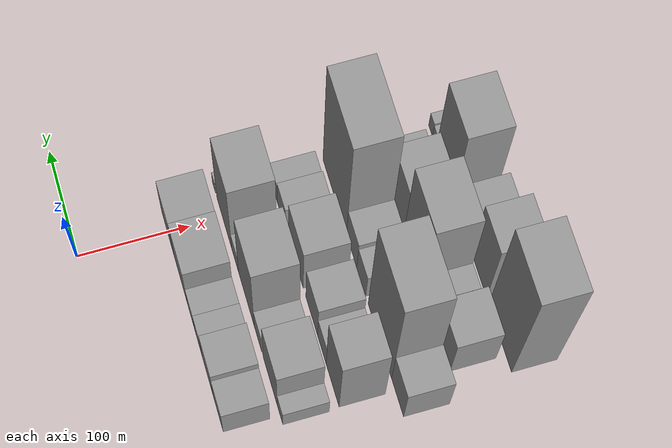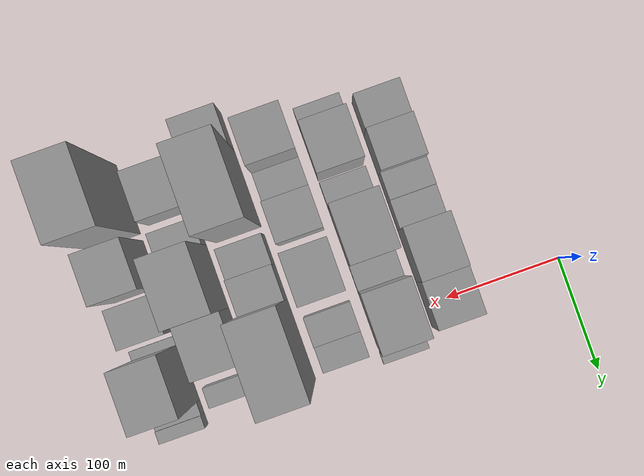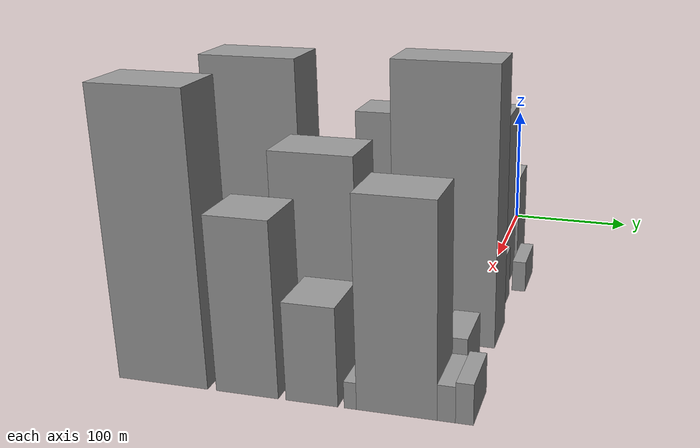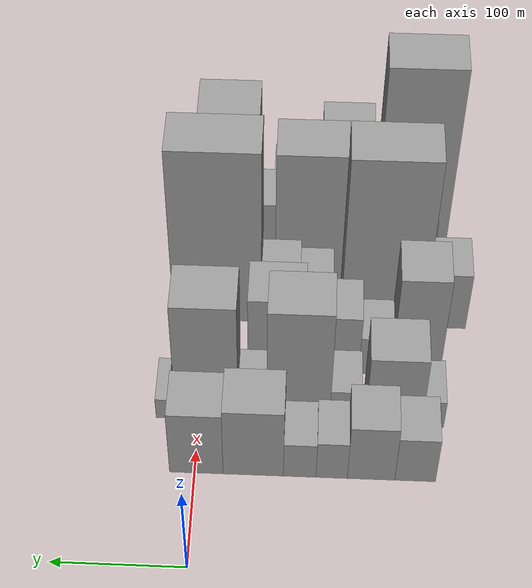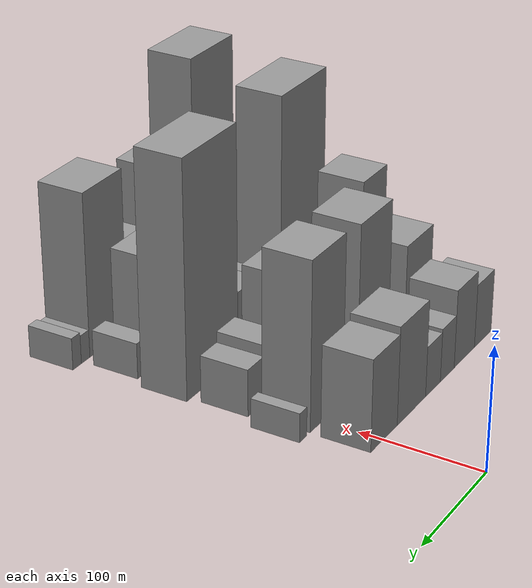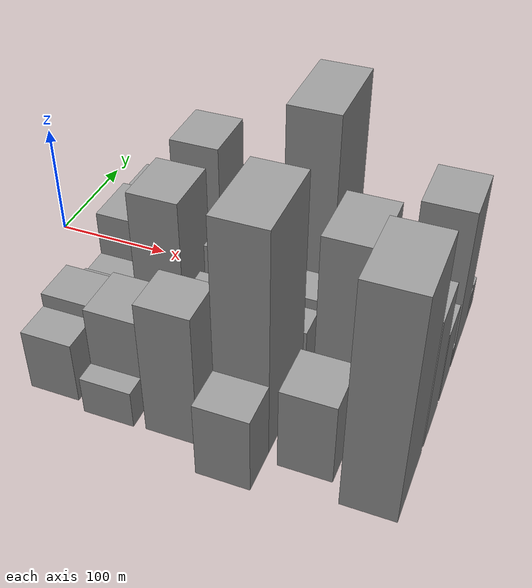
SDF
<sdf version="1.6">
 <world name="default">
  <model name="building_20">
   <static>1</static>
   <pose>100.0000 -166.4657 0 0.000000 0.000000 0.000000</pose>
   <link name="link">
    <pose>0 0 27.00 0 0 0</pose>
    <collision name="collision"><geometry><box><size>40.0000 30.4520 54.0000</size></box></geometry></collision>
    <visual name="visual">
     <cast_shadows>0</cast_shadows>
     <geometry><box><size>40.0000 30.4520 54.0000</size></box></geometry>
     <material>
      <script>
       <uri>model://grey_wall/materials/scripts</uri>
       <uri>model://grey_wall/materials/textures</uri>
       <name>vrc/grey_wall</name>
      </script>
     </material>
    </visual>
   </link>
  </model>
  <model name="building_21">
   <static>1</static>
   <pose>100.0000 -133.3583 0 0.000000 0.000000 0.000000</pose>
   <link name="link">
    <pose>0 0 33.00 0 0 0</pose>
    <collision name="collision"><geometry><box><size>40.0000 35.7628 66.0000</size></box></geometry></collision>
    <visual name="visual">
     <cast_shadows>0</cast_shadows>
     <geometry><box><size>40.0000 35.7628 66.0000</size></box></geometry>
     <material>
      <script>
       <uri>model://grey_wall/materials/scripts</uri>
       <uri>model://grey_wall/materials/textures</uri>
       <name>vrc/grey_wall</name>
      </script>
     </material>
    </visual>
   </link>
  </model>
  <model name="building_22">
   <static>1</static>
   <pose>100.0000 -103.6162 0 0.000000 0.000000 0.000000</pose>
   <link name="link">
    <pose>0 0 22.50 0 0 0</pose>
    <collision name="collision"><geometry><box><size>40.0000 23.7214 45.0000</size></box></geometry></collision>
    <visual name="visual">
     <cast_shadows>0</cast_shadows>
     <geometry><box><size>40.0000 23.7214 45.0000</size></box></geometry>
     <material>
      <script>
       <uri>model://grey_wall/materials/scripts</uri>
       <uri>model://grey_wall/materials/textures</uri>
       <name>vrc/grey_wall</name>
      </script>
     </material>
    </visual>
   </link>
  </model>
  <model name="building_23">
   <static>1</static>
   <pose>100.0000 -79.4500 0 0.000000 0.000000 0.000000</pose>
   <link name="link">
    <pose>0 0 21.00 0 0 0</pose>
    <collision name="collision"><geometry><box><size>40.0000 24.6110 42.0000</size></box></geometry></collision>
    <visual name="visual">
     <cast_shadows>0</cast_shadows>
     <geometry><box><size>40.0000 24.6110 42.0000</size></box></geometry>
     <material>
      <script>
       <uri>model://grey_wall/materials/scripts</uri>
       <uri>model://grey_wall/materials/textures</uri>
       <name>vrc/grey_wall</name>
      </script>
     </material>
    </visual>
   </link>
  </model>
  <model name="building_24">
   <static>1</static>
   <pose>100.0000 -44.3742 0 0.000000 0.000000 0.000000</pose>
   <link name="link">
    <pose>0 0 40.50 0 0 0</pose>
    <collision name="collision"><geometry><box><size>40.0000 45.5407 81.0000</size></box></geometry></collision>
    <visual name="visual">
     <cast_shadows>0</cast_shadows>
     <geometry><box><size>40.0000 45.5407 81.0000</size></box></geometry>
     <material>
      <script>
       <uri>model://grey_wall/materials/scripts</uri>
       <uri>model://grey_wall/materials/textures</uri>
       <name>vrc/grey_wall</name>
      </script>
     </material>
    </visual>
   </link>
  </model>
  <model name="building_25">
   <static>1</static>
   <pose>100.0000 -1.3551 0 0.000000 0.000000 0.000000</pose>
   <link name="link">
    <pose>0 0 37.50 0 0 0</pose>
    <collision name="collision"><geometry><box><size>40.0000 40.4975 75.0000</size></box></geometry></collision>
    <visual name="visual">
     <cast_shadows>0</cast_shadows>
     <geometry><box><size>40.0000 40.4975 75.0000</size></box></geometry>
     <material>
      <script>
       <uri>model://grey_wall/materials/scripts</uri>
       <uri>model://grey_wall/materials/textures</uri>
       <name>vrc/grey_wall</name>
      </script>
     </material>
    </visual>
   </link>
  </model>
  <model name="building_64">
   <static>1</static>
   <pose>149.0000 -181.0487 0 0.000000 0.000000 0.000000</pose>
   <link name="link">
    <pose>0 0 16.50 0 0 0</pose>
    <collision name="collision"><geometry><box><size>40.0000 16.7886 33.0000</size></box></geometry></collision>
    <visual name="visual">
     <cast_shadows>0</cast_shadows>
     <geometry><box><size>40.0000 16.7886 33.0000</size></box></geometry>
     <material>
      <script>
       <uri>model://grey_wall/materials/scripts</uri>
       <uri>model://grey_wall/materials/textures</uri>
       <name>vrc/grey_wall</name>
      </script>
     </material>
    </visual>
   </link>
  </model>
  <model name="building_65">
   <static>1</static>
   <pose>149.0000 -150.7828 0 0.000000 0.000000 0.000000</pose>
   <link name="link">
    <pose>0 0 42.00 0 0 0</pose>
    <collision name="collision"><geometry><box><size>40.0000 43.7432 84.0000</size></box></geometry></collision>
    <visual name="visual">
     <cast_shadows>0</cast_shadows>
     <geometry><box><size>40.0000 43.7432 84.0000</size></box></geometry>
     <material>
      <script>
       <uri>model://grey_wall/materials/scripts</uri>
       <uri>model://grey_wall/materials/textures</uri>
       <name>vrc/grey_wall</name>
      </script>
     </material>
    </visual>
   </link>
  </model>
  <model name="building_66">
   <static>1</static>
   <pose>149.0000 -113.1161 0 0.000000 0.000000 0.000000</pose>
   <link name="link">
    <pose>0 0 21.00 0 0 0</pose>
    <collision name="collision"><geometry><box><size>40.0000 23.5902 42.0000</size></box></geometry></collision>
    <visual name="visual">
     <cast_shadows>0</cast_shadows>
     <geometry><box><size>40.0000 23.5902 42.0000</size></box></geometry>
     <material>
      <script>
       <uri>model://grey_wall/materials/scripts</uri>
       <uri>model://grey_wall/materials/textures</uri>
       <name>vrc/grey_wall</name>
      </script>
     </material>
    </visual>
   </link>
  </model>
  <model name="building_67">
   <static>1</static>
   <pose>149.0000 -76.9231 0 0.000000 0.000000 0.000000</pose>
   <link name="link">
    <pose>0 0 67.50 0 0 0</pose>
    <collision name="collision"><geometry><box><size>40.0000 48.7959 135.0000</size></box></geometry></collision>
    <visual name="visual">
     <cast_shadows>0</cast_shadows>
     <geometry><box><size>40.0000 48.7959 135.0000</size></box></geometry>
     <material>
      <script>
       <uri>model://grey_wall/materials/scripts</uri>
       <uri>model://grey_wall/materials/textures</uri>
       <name>vrc/grey_wall</name>
      </script>
     </material>
    </visual>
   </link>
  </model>
  <model name="building_68">
   <static>1</static>
   <pose>149.0000 -41.5381 0 0.000000 0.000000 0.000000</pose>
   <link name="link">
    <pose>0 0 19.50 0 0 0</pose>
    <collision name="collision"><geometry><box><size>40.0000 21.9740 39.0000</size></box></geometry></collision>
    <visual name="visual">
     <cast_shadows>0</cast_shadows>
     <geometry><box><size>40.0000 21.9740 39.0000</size></box></geometry>
     <material>
      <script>
       <uri>model://grey_wall/materials/scripts</uri>
       <uri>model://grey_wall/materials/textures</uri>
       <name>vrc/grey_wall</name>
      </script>
     </material>
    </visual>
   </link>
  </model>
  <model name="building_69">
   <static>1</static>
   <pose>149.0000 -6.2541 0 0.000000 0.000000 0.000000</pose>
   <link name="link">
    <pose>0 0 69.00 0 0 0</pose>
    <collision name="collision"><geometry><box><size>40.0000 48.5938 138.0000</size></box></geometry></collision>
    <visual name="visual">
     <cast_shadows>0</cast_shadows>
     <geometry><box><size>40.0000 48.5938 138.0000</size></box></geometry>
     <material>
      <script>
       <uri>model://grey_wall/materials/scripts</uri>
       <uri>model://grey_wall/materials/textures</uri>
       <name>vrc/grey_wall</name>
      </script>
     </material>
    </visual>
   </link>
  </model>
  <model name="building_70">
   <static>1</static>
   <pose>149.0000 28.1490 0 0.000000 0.000000 0.000000</pose>
   <link name="link">
    <pose>0 0 12.00 0 0 0</pose>
    <collision name="collision"><geometry><box><size>40.0000 10.2124 24.0000</size></box></geometry></collision>
    <visual name="visual">
     <cast_shadows>0</cast_shadows>
     <geometry><box><size>40.0000 10.2124 24.0000</size></box></geometry>
     <material>
      <script>
       <uri>model://grey_wall/materials/scripts</uri>
       <uri>model://grey_wall/materials/textures</uri>
       <name>vrc/grey_wall</name>
      </script>
     </material>
    </visual>
   </link>
  </model>
  <model name="building_114">
   <static>1</static>
   <pose>198.0000 -168.8374 0 0.000000 0.000000 0.000000</pose>
   <link name="link">
    <pose>0 0 58.50 0 0 0</pose>
    <collision name="collision"><geometry><box><size>40.0000 38.2123 117.0000</size></box></geometry></collision>
    <visual name="visual">
     <cast_shadows>0</cast_shadows>
     <geometry><box><size>40.0000 38.2123 117.0000</size></box></geometry>
     <material>
      <script>
       <uri>model://grey_wall/materials/scripts</uri>
       <uri>model://grey_wall/materials/textures</uri>
       <name>vrc/grey_wall</name>
      </script>
     </material>
    </visual>
   </link>
  </model>
  <model name="building_115">
   <static>1</static>
   <pose>198.0000 -136.9080 0 0.000000 0.000000 0.000000</pose>
   <link name="link">
    <pose>0 0 22.50 0 0 0</pose>
    <collision name="collision"><geometry><box><size>40.0000 25.6464 45.0000</size></box></geometry></collision>
    <visual name="visual">
     <cast_shadows>0</cast_shadows>
     <geometry><box><size>40.0000 25.6464 45.0000</size></box></geometry>
     <material>
      <script>
       <uri>model://grey_wall/materials/scripts</uri>
       <uri>model://grey_wall/materials/textures</uri>
       <name>vrc/grey_wall</name>
      </script>
     </material>
    </visual>
   </link>
  </model>
  <model name="building_116">
   <static>1</static>
   <pose>198.0000 -106.2797 0 0.000000 0.000000 0.000000</pose>
   <link name="link">
    <pose>0 0 34.50 0 0 0</pose>
    <collision name="collision"><geometry><box><size>40.0000 35.6103 69.0000</size></box></geometry></collision>
    <visual name="visual">
     <cast_shadows>0</cast_shadows>
     <geometry><box><size>40.0000 35.6103 69.0000</size></box></geometry>
     <material>
      <script>
       <uri>model://grey_wall/materials/scripts</uri>
       <uri>model://grey_wall/materials/textures</uri>
       <name>vrc/grey_wall</name>
      </script>
     </material>
    </visual>
   </link>
  </model>
  <model name="building_117">
   <static>1</static>
   <pose>198.0000 -58.1262 0 0.000000 0.000000 0.000000</pose>
   <link name="link">
    <pose>0 0 43.50 0 0 0</pose>
    <collision name="collision"><geometry><box><size>40.0000 44.6966 87.0000</size></box></geometry></collision>
    <visual name="visual">
     <cast_shadows>0</cast_shadows>
     <geometry><box><size>40.0000 44.6966 87.0000</size></box></geometry>
     <material>
      <script>
       <uri>model://grey_wall/materials/scripts</uri>
       <uri>model://grey_wall/materials/textures</uri>
       <name>vrc/grey_wall</name>
      </script>
     </material>
    </visual>
   </link>
  </model>
  <model name="building_118">
   <static>1</static>
   <pose>198.0000 -13.0134 0 0.000000 0.000000 0.000000</pose>
   <link name="link">
    <pose>0 0 24.00 0 0 0</pose>
    <collision name="collision"><geometry><box><size>40.0000 25.5291 48.0000</size></box></geometry></collision>
    <visual name="visual">
     <cast_shadows>0</cast_shadows>
     <geometry><box><size>40.0000 25.5291 48.0000</size></box></geometry>
     <material>
      <script>
       <uri>model://grey_wall/materials/scripts</uri>
       <uri>model://grey_wall/materials/textures</uri>
       <name>vrc/grey_wall</name>
      </script>
     </material>
    </visual>
   </link>
  </model>
  <model name="building_119">
   <static>1</static>
   <pose>198.0000 11.0449 0 0.000000 0.000000 0.000000</pose>
   <link name="link">
    <pose>0 0 19.50 0 0 0</pose>
    <collision name="collision"><geometry><box><size>40.0000 22.5875 39.0000</size></box></geometry></collision>
    <visual name="visual">
     <cast_shadows>0</cast_shadows>
     <geometry><box><size>40.0000 22.5875 39.0000</size></box></geometry>
     <material>
      <script>
       <uri>model://grey_wall/materials/scripts</uri>
       <uri>model://grey_wall/materials/textures</uri>
       <name>vrc/grey_wall</name>
      </script>
     </material>
    </visual>
   </link>
  </model>
  <model name="building_158">
   <static>1</static>
   <pose>247.0000 -193.6033 0 0.000000 0.000000 0.000000</pose>
   <link name="link">
    <pose>0 0 33.00 0 0 0</pose>
    <collision name="collision"><geometry><box><size>40.0000 33.9448 66.0000</size></box></geometry></collision>
    <visual name="visual">
     <cast_shadows>0</cast_shadows>
     <geometry><box><size>40.0000 33.9448 66.0000</size></box></geometry>
     <material>
      <script>
       <uri>model://grey_wall/materials/scripts</uri>
       <uri>model://grey_wall/materials/textures</uri>
       <name>vrc/grey_wall</name>
      </script>
     </material>
    </visual>
   </link>
  </model>
  <model name="building_159">
   <static>1</static>
   <pose>247.0000 -142.7196 0 0.000000 0.000000 0.000000</pose>
   <link name="link">
    <pose>0 0 96.00 0 0 0</pose>
    <collision name="collision"><geometry><box><size>40.0000 67.8226 192.0000</size></box></geometry></collision>
    <visual name="visual">
     <cast_shadows>0</cast_shadows>
     <geometry><box><size>40.0000 67.8226 192.0000</size></box></geometry>
     <material>
      <script>
       <uri>model://grey_wall/materials/scripts</uri>
       <uri>model://grey_wall/materials/textures</uri>
       <name>vrc/grey_wall</name>
      </script>
     </material>
    </visual>
   </link>
  </model>
  <model name="building_160">
   <static>1</static>
   <pose>247.0000 -88.5328 0 0.000000 0.000000 0.000000</pose>
   <link name="link">
    <pose>0 0 24.00 0 0 0</pose>
    <collision name="collision"><geometry><box><size>40.0000 26.5511 48.0000</size></box></geometry></collision>
    <visual name="visual">
     <cast_shadows>0</cast_shadows>
     <geometry><box><size>40.0000 26.5511 48.0000</size></box></geometry>
     <material>
      <script>
       <uri>model://grey_wall/materials/scripts</uri>
       <uri>model://grey_wall/materials/textures</uri>
       <name>vrc/grey_wall</name>
      </script>
     </material>
    </visual>
   </link>
  </model>
  <model name="building_161">
   <static>1</static>
   <pose>247.0000 -59.7834 0 0.000000 0.000000 0.000000</pose>
   <link name="link">
    <pose>0 0 28.50 0 0 0</pose>
    <collision name="collision"><geometry><box><size>40.0000 30.9476 57.0000</size></box></geometry></collision>
    <visual name="visual">
     <cast_shadows>0</cast_shadows>
     <geometry><box><size>40.0000 30.9476 57.0000</size></box></geometry>
     <material>
      <script>
       <uri>model://grey_wall/materials/scripts</uri>
       <uri>model://grey_wall/materials/textures</uri>
       <name>vrc/grey_wall</name>
      </script>
     </material>
    </visual>
   </link>
  </model>
  <model name="building_162">
   <static>1</static>
   <pose>247.0000 -8.4711 0 0.000000 0.000000 0.000000</pose>
   <link name="link">
    <pose>0 0 97.50 0 0 0</pose>
    <collision name="collision"><geometry><box><size>40.0000 71.6770 195.0000</size></box></geometry></collision>
    <visual name="visual">
     <cast_shadows>0</cast_shadows>
     <geometry><box><size>40.0000 71.6770 195.0000</size></box></geometry>
     <material>
      <script>
       <uri>model://grey_wall/materials/scripts</uri>
       <uri>model://grey_wall/materials/textures</uri>
       <name>vrc/grey_wall</name>
      </script>
     </material>
    </visual>
   </link>
  </model>
  <model name="building_209">
   <static>1</static>
   <pose>296.0000 -162.9126 0 0.000000 0.000000 0.000000</pose>
   <link name="link">
    <pose>0 0 36.00 0 0 0</pose>
    <collision name="collision"><geometry><box><size>40.0000 42.2195 72.0000</size></box></geometry></collision>
    <visual name="visual">
     <cast_shadows>0</cast_shadows>
     <geometry><box><size>40.0000 42.2195 72.0000</size></box></geometry>
     <material>
      <script>
       <uri>model://grey_wall/materials/scripts</uri>
       <uri>model://grey_wall/materials/textures</uri>
       <name>vrc/grey_wall</name>
      </script>
     </material>
    </visual>
   </link>
  </model>
  <model name="building_210">
   <static>1</static>
   <pose>296.0000 -121.3817 0 0.000000 0.000000 0.000000</pose>
   <link name="link">
    <pose>0 0 19.50 0 0 0</pose>
    <collision name="collision"><geometry><box><size>40.0000 22.8423 39.0000</size></box></geometry></collision>
    <visual name="visual">
     <cast_shadows>0</cast_shadows>
     <geometry><box><size>40.0000 22.8423 39.0000</size></box></geometry>
     <material>
      <script>
       <uri>model://grey_wall/materials/scripts</uri>
       <uri>model://grey_wall/materials/textures</uri>
       <name>vrc/grey_wall</name>
      </script>
     </material>
    </visual>
   </link>
  </model>
  <model name="building_211">
   <static>1</static>
   <pose>296.0000 -81.8800 0 0.000000 0.000000 0.000000</pose>
   <link name="link">
    <pose>0 0 72.00 0 0 0</pose>
    <collision name="collision"><geometry><box><size>40.0000 56.1610 144.0000</size></box></geometry></collision>
    <visual name="visual">
     <cast_shadows>0</cast_shadows>
     <geometry><box><size>40.0000 56.1610 144.0000</size></box></geometry>
     <material>
      <script>
       <uri>model://grey_wall/materials/scripts</uri>
       <uri>model://grey_wall/materials/textures</uri>
       <name>vrc/grey_wall</name>
      </script>
     </material>
    </visual>
   </link>
  </model>
  <model name="building_212">
   <static>1</static>
   <pose>296.0000 -31.3492 0 0.000000 0.000000 0.000000</pose>
   <link name="link">
    <pose>0 0 43.50 0 0 0</pose>
    <collision name="collision"><geometry><box><size>40.0000 44.9006 87.0000</size></box></geometry></collision>
    <visual name="visual">
     <cast_shadows>0</cast_shadows>
     <geometry><box><size>40.0000 44.9006 87.0000</size></box></geometry>
     <material>
      <script>
       <uri>model://grey_wall/materials/scripts</uri>
       <uri>model://grey_wall/materials/textures</uri>
       <name>vrc/grey_wall</name>
      </script>
     </material>
    </visual>
   </link>
  </model>
  <model name="building_213">
   <static>1</static>
   <pose>296.0000 9.9374 0 0.000000 0.000000 0.000000</pose>
   <link name="link">
    <pose>0 0 15.00 0 0 0</pose>
    <collision name="collision"><geometry><box><size>40.0000 17.6727 30.0000</size></box></geometry></collision>
    <visual name="visual">
     <cast_shadows>0</cast_shadows>
     <geometry><box><size>40.0000 17.6727 30.0000</size></box></geometry>
     <material>
      <script>
       <uri>model://grey_wall/materials/scripts</uri>
       <uri>model://grey_wall/materials/textures</uri>
       <name>vrc/grey_wall</name>
      </script>
     </material>
    </visual>
   </link>
  </model>
  <model name="building_254">
   <static>1</static>
   <pose>345.0000 -168.2582 0 0.000000 0.000000 0.000000</pose>
   <link name="link">
    <pose>0 0 96.00 0 0 0</pose>
    <collision name="collision"><geometry><box><size>40.0000 61.7648 192.0000</size></box></geometry></collision>
    <visual name="visual">
     <cast_shadows>0</cast_shadows>
     <geometry><box><size>40.0000 61.7648 192.0000</size></box></geometry>
     <material>
      <script>
       <uri>model://grey_wall/materials/scripts</uri>
       <uri>model://grey_wall/materials/textures</uri>
       <name>vrc/grey_wall</name>
      </script>
     </material>
    </visual>
   </link>
  </model>
  <model name="building_255">
   <static>1</static>
   <pose>345.0000 -110.6105 0 0.000000 0.000000 0.000000</pose>
   <link name="link">
    <pose>0 0 58.50 0 0 0</pose>
    <collision name="collision"><geometry><box><size>40.0000 41.5305 117.0000</size></box></geometry></collision>
    <visual name="visual">
     <cast_shadows>0</cast_shadows>
     <geometry><box><size>40.0000 41.5305 117.0000</size></box></geometry>
     <material>
      <script>
       <uri>model://grey_wall/materials/scripts</uri>
       <uri>model://grey_wall/materials/textures</uri>
       <name>vrc/grey_wall</name>
      </script>
     </material>
    </visual>
   </link>
  </model>
  <model name="building_256">
   <static>1</static>
   <pose>345.0000 -67.9730 0 0.000000 0.000000 0.000000</pose>
   <link name="link">
    <pose>0 0 33.00 0 0 0</pose>
    <collision name="collision"><geometry><box><size>40.0000 33.7446 66.0000</size></box></geometry></collision>
    <visual name="visual">
     <cast_shadows>0</cast_shadows>
     <geometry><box><size>40.0000 33.7446 66.0000</size></box></geometry>
     <material>
      <script>
       <uri>model://grey_wall/materials/scripts</uri>
       <uri>model://grey_wall/materials/textures</uri>
       <name>vrc/grey_wall</name>
      </script>
     </material>
    </visual>
   </link>
  </model>
  <model name="building_257">
   <static>1</static>
   <pose>345.0000 -43.1849 0 0.000000 0.000000 0.000000</pose>
   <link name="link">
    <pose>0 0 9.00 0 0 0</pose>
    <collision name="collision"><geometry><box><size>40.0000 7.8315 18.0000</size></box></geometry></collision>
    <visual name="visual">
     <cast_shadows>0</cast_shadows>
     <geometry><box><size>40.0000 7.8315 18.0000</size></box></geometry>
     <material>
      <script>
       <uri>model://grey_wall/materials/scripts</uri>
       <uri>model://grey_wall/materials/textures</uri>
       <name>vrc/grey_wall</name>
      </script>
     </material>
    </visual>
   </link>
  </model>
  <model name="building_258">
   <static>1</static>
   <pose>345.0000 -14.1853 0 0.000000 0.000000 0.000000</pose>
   <link name="link">
    <pose>0 0 69.00 0 0 0</pose>
    <collision name="collision"><geometry><box><size>40.0000 50.1678 138.0000</size></box></geometry></collision>
    <visual name="visual">
     <cast_shadows>0</cast_shadows>
     <geometry><box><size>40.0000 50.1678 138.0000</size></box></geometry>
     <material>
      <script>
       <uri>model://grey_wall/materials/scripts</uri>
       <uri>model://grey_wall/materials/textures</uri>
       <name>vrc/grey_wall</name>
      </script>
     </material>
    </visual>
   </link>
  </model>
  <model name="building_259">
   <static>1</static>
   <pose>345.0000 16.4474 0 0.000000 0.000000 0.000000</pose>
   <link name="link">
    <pose>0 0 12.00 0 0 0</pose>
    <collision name="collision"><geometry><box><size>40.0000 11.0974 24.0000</size></box></geometry></collision>
    <visual name="visual">
     <cast_shadows>0</cast_shadows>
     <geometry><box><size>40.0000 11.0974 24.0000</size></box></geometry>
     <material>
      <script>
       <uri>model://grey_wall/materials/scripts</uri>
       <uri>model://grey_wall/materials/textures</uri>
       <name>vrc/grey_wall</name>
      </script>
     </material>
    </visual>
   </link>
  </model>
  <model name="building_260">
   <static>1</static>
   <pose>345.0000 27.4325 0 0.000000 0.000000 0.000000</pose>
   <link name="link">
    <pose>0 0 13.50 0 0 0</pose>
    <collision name="collision"><geometry><box><size>40.0000 10.8728 27.0000</size></box></geometry></collision>
    <visual name="visual">
     <cast_shadows>0</cast_shadows>
     <geometry><box><size>40.0000 10.8728 27.0000</size></box></geometry>
     <material>
      <script>
       <uri>model://grey_wall/materials/scripts</uri>
       <uri>model://grey_wall/materials/textures</uri>
       <name>vrc/grey_wall</name>
      </script>
     </material>
    </visual>
   </link>
  </model>
 </world>
</sdf>
